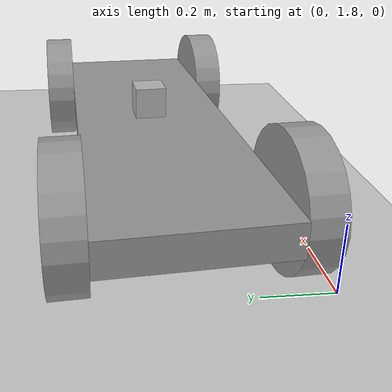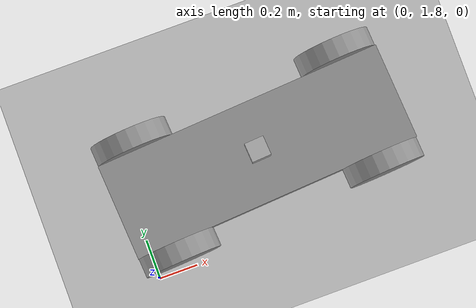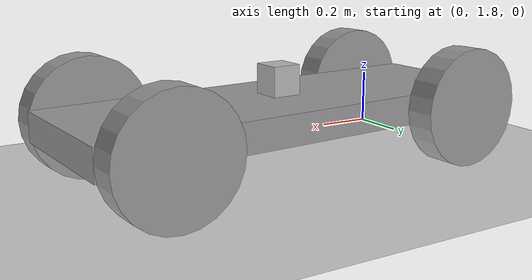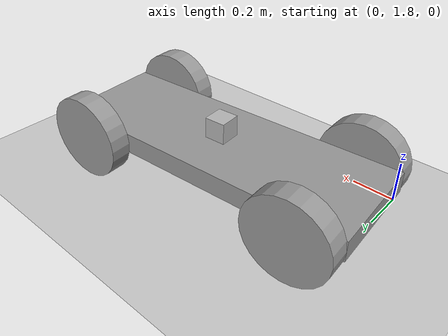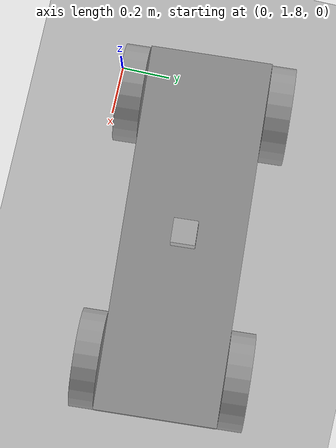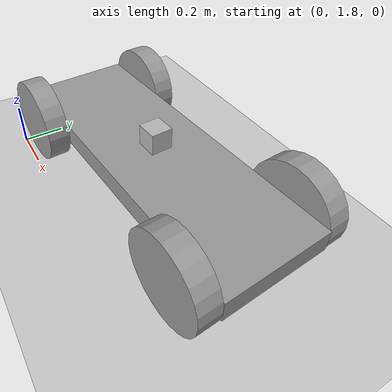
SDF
<sdf version="1.6">
 <world name="default">
  <model name="ground_plane">
   <static>1</static>
   <link name="link">
    <collision name="collision">
     <geometry><plane><normal>0 0 1</normal><size>100 100</size></plane></geometry>
     <surface>
      <contact><collide_bitmask>65535</collide_bitmask></contact>
      <friction><ode><mu>100</mu><mu2>50</mu2></ode></friction>
     </surface>
    </collision>
    <visual name="visual">
     <cast_shadows>0</cast_shadows>
     <geometry><plane><normal>0 0 1</normal><size>100 100</size></plane></geometry>
     <material>
      <script><uri>file://media/materials/scripts/gazebo.material</uri><name>Gazebo/Grey</name></script>
     </material>
    </visual>
   </link>
  </model>
  <model name="MobileRobot">
   <link name="link_1">
    <pose>-0.000519 -0.000589 -0.009488 0 -0 0</pose>
    <inertial>
     <mass>1</mass>
     <inertia>
      <ixx>0.166667</ixx>
      <ixy>0</ixy>
      <ixz>0</ixz>
      <iyy>0.166667</iyy>
      <iyz>0</iyz>
      <izz>0.166667</izz>
     </inertia>
    </inertial>
    <visual name="visual">
     <geometry><box><size>1.5 0.5 0.1</size></box></geometry>
     <material>
      <lighting>1</lighting>
      <script><uri>file://media/materials/scripts/gazebo.material</uri><name>Gazebo/Grey</name></script>
      <shader type="pixel"><normal_map>__default__</normal_map></shader>
      <ambient>0.3 0.3 0.3 1</ambient>
      <diffuse>0.7 0.7 0.7 1</diffuse>
      <specular>0.01 0.01 0.01 1</specular>
      <emissive>0 0 0 1</emissive>
     </material>
    </visual>
    <collision name="collision">
     <geometry><box><size>1.5 0.5 0.1</size></box></geometry>
     <surface>
      <friction>
       <ode><mu>1</mu><mu2>1</mu2><fdir1>0 0 0</fdir1><slip1>0</slip1><slip2>0</slip2></ode>
       <torsional>
        <coefficient>1</coefficient>
        <patch_radius>0</patch_radius>
        <surface_radius>0</surface_radius>
        <use_patch_radius>1</use_patch_radius>
        <ode><slip>0</slip></ode>
       </torsional>
      </friction>
      <bounce><restitution_coefficient>0</restitution_coefficient><threshold>1e+06</threshold></bounce>
      <contact>
       <collide_without_contact>0</collide_without_contact>
       <collide_without_contact_bitmask>1</collide_without_contact_bitmask>
       <collide_bitmask>1</collide_bitmask>
       <ode>
        <soft_cfm>0</soft_cfm>
        <soft_erp>0.2</soft_erp>
        <kp>1e+13</kp>
        <kd>1</kd>
        <max_vel>0.01</max_vel>
        <min_depth>0</min_depth>
       </ode>
       <bullet>
        <split_impulse>1</split_impulse>
        <split_impulse_penetration_threshold>-0.01</split_impulse_penetration_threshold>
        <soft_cfm>0</soft_cfm>
        <soft_erp>0.2</soft_erp>
        <kp>1e+13</kp>
        <kd>1</kd>
       </bullet>
      </contact>
     </surface>
    </collision>
   </link>
   <link name="link_2">
    <pose>-0.550519 -0.300608 -0.009488 1.5707 -0 0</pose>
    <inertial>
     <mass>1</mass>
     <inertia><ixx>0.145833</ixx><ixy>0</ixy><ixz>0</ixz><iyy>0.145833</iyy><iyz>0</iyz><izz>0.125</izz></inertia>
    </inertial>
    <visual name="visual">
     <geometry><cylinder><radius>0.2</radius><length>0.1</length></cylinder></geometry>
     <material>
      <lighting>1</lighting>
      <script><uri>file://media/materials/scripts/gazebo.material</uri><name>Gazebo/Grey</name></script>
      <shader type="pixel"><normal_map>__default__</normal_map></shader>
      <ambient>0.3 0.3 0.3 1</ambient>
      <diffuse>0.7 0.7 0.7 1</diffuse>
      <specular>0.01 0.01 0.01 1</specular>
      <emissive>0 0 0 1</emissive>
     </material>
    </visual>
    <collision name="collision">
     <geometry><cylinder><radius>0.2</radius><length>0.1</length></cylinder></geometry>
     <surface>
      <friction>
       <ode><mu>1</mu><mu2>1</mu2><fdir1>0 0 0</fdir1><slip1>0</slip1><slip2>0</slip2></ode>
       <torsional>
        <coefficient>1</coefficient>
        <patch_radius>0</patch_radius>
        <surface_radius>0</surface_radius>
        <use_patch_radius>1</use_patch_radius>
        <ode><slip>0</slip></ode>
       </torsional>
      </friction>
      <bounce><restitution_coefficient>0</restitution_coefficient><threshold>1e+06</threshold></bounce>
      <contact>
       <collide_without_contact>0</collide_without_contact>
       <collide_without_contact_bitmask>1</collide_without_contact_bitmask>
       <collide_bitmask>1</collide_bitmask>
       <ode>
        <soft_cfm>0</soft_cfm>
        <soft_erp>0.2</soft_erp>
        <kp>1e+13</kp>
        <kd>1</kd>
        <max_vel>0.01</max_vel>
        <min_depth>0</min_depth>
       </ode>
       <bullet>
        <split_impulse>1</split_impulse>
        <split_impulse_penetration_threshold>-0.01</split_impulse_penetration_threshold>
        <soft_cfm>0</soft_cfm>
        <soft_erp>0.2</soft_erp>
        <kp>1e+13</kp>
        <kd>1</kd>
       </bullet>
      </contact>
     </surface>
    </collision>
   </link>
   <link name="link_2_clone">
    <pose>-0.550519 0.299431 -0.009488 1.5707 -0 0</pose>
    <inertial>
     <mass>1</mass>
     <inertia><ixx>0.145833</ixx><ixy>0</ixy><ixz>0</ixz><iyy>0.145833</iyy><iyz>0</iyz><izz>0.125</izz></inertia>
    </inertial>
    <visual name="visual">
     <geometry><cylinder><radius>0.2</radius><length>0.1</length></cylinder></geometry>
     <material>
      <lighting>1</lighting>
      <script><uri>file://media/materials/scripts/gazebo.material</uri><name>Gazebo/Grey</name></script>
      <shader type="pixel"><normal_map>__default__</normal_map></shader>
      <ambient>0.3 0.3 0.3 1</ambient>
      <diffuse>0.7 0.7 0.7 1</diffuse>
      <specular>0.01 0.01 0.01 1</specular>
      <emissive>0 0 0 1</emissive>
     </material>
    </visual>
    <collision name="collision">
     <geometry><cylinder><radius>0.2</radius><length>0.1</length></cylinder></geometry>
     <surface>
      <friction>
       <ode><mu>1</mu><mu2>1</mu2><fdir1>0 0 0</fdir1><slip1>0</slip1><slip2>0</slip2></ode>
       <torsional>
        <coefficient>1</coefficient>
        <patch_radius>0</patch_radius>
        <surface_radius>0</surface_radius>
        <use_patch_radius>1</use_patch_radius>
        <ode><slip>0</slip></ode>
       </torsional>
      </friction>
      <bounce><restitution_coefficient>0</restitution_coefficient><threshold>1e+06</threshold></bounce>
      <contact>
       <collide_without_contact>0</collide_without_contact>
       <collide_without_contact_bitmask>1</collide_without_contact_bitmask>
       <collide_bitmask>1</collide_bitmask>
       <ode>
        <soft_cfm>0</soft_cfm>
        <soft_erp>0.2</soft_erp>
        <kp>1e+13</kp>
        <kd>1</kd>
        <max_vel>0.01</max_vel>
        <min_depth>0</min_depth>
       </ode>
       <bullet>
        <split_impulse>1</split_impulse>
        <split_impulse_penetration_threshold>-0.01</split_impulse_penetration_threshold>
        <soft_cfm>0</soft_cfm>
        <soft_erp>0.2</soft_erp>
        <kp>1e+13</kp>
        <kd>1</kd>
       </bullet>
      </contact>
     </surface>
    </collision>
   </link>
   <link name="link_2_clone_0">
    <pose>0.549481 -0.300608 -0.009488 1.5707 -0 0</pose>
    <inertial>
     <mass>1</mass>
     <inertia><ixx>0.145833</ixx><ixy>0</ixy><ixz>0</ixz><iyy>0.145833</iyy><iyz>0</iyz><izz>0.125</izz></inertia>
    </inertial>
    <visual name="visual">
     <geometry><cylinder><radius>0.2</radius><length>0.1</length></cylinder></geometry>
     <material>
      <lighting>1</lighting>
      <script><uri>file://media/materials/scripts/gazebo.material</uri><name>Gazebo/Grey</name></script>
      <shader type="pixel"><normal_map>__default__</normal_map></shader>
      <ambient>0.3 0.3 0.3 1</ambient>
      <diffuse>0.7 0.7 0.7 1</diffuse>
      <specular>0.01 0.01 0.01 1</specular>
      <emissive>0 0 0 1</emissive>
     </material>
    </visual>
    <collision name="collision">
     <geometry><cylinder><radius>0.2</radius><length>0.1</length></cylinder></geometry>
     <surface>
      <friction>
       <ode><mu>1</mu><mu2>1</mu2><fdir1>0 0 0</fdir1><slip1>0</slip1><slip2>0</slip2></ode>
       <torsional>
        <coefficient>1</coefficient>
        <patch_radius>0</patch_radius>
        <surface_radius>0</surface_radius>
        <use_patch_radius>1</use_patch_radius>
        <ode><slip>0</slip></ode>
       </torsional>
      </friction>
      <bounce><restitution_coefficient>0</restitution_coefficient><threshold>1e+06</threshold></bounce>
      <contact>
       <collide_without_contact>0</collide_without_contact>
       <collide_without_contact_bitmask>1</collide_without_contact_bitmask>
       <collide_bitmask>1</collide_bitmask>
       <ode>
        <soft_cfm>0</soft_cfm>
        <soft_erp>0.2</soft_erp>
        <kp>1e+13</kp>
        <kd>1</kd>
        <max_vel>0.01</max_vel>
        <min_depth>0</min_depth>
       </ode>
       <bullet>
        <split_impulse>1</split_impulse>
        <split_impulse_penetration_threshold>-0.01</split_impulse_penetration_threshold>
        <soft_cfm>0</soft_cfm>
        <soft_erp>0.2</soft_erp>
        <kp>1e+13</kp>
        <kd>1</kd>
       </bullet>
      </contact>
     </surface>
    </collision>
   </link>
   <link name="link_2_clone_1">
    <pose>0.549481 0.299431 -0.009488 1.5707 -0 0</pose>
    <inertial>
     <mass>1</mass>
     <inertia><ixx>0.145833</ixx><ixy>0</ixy><ixz>0</ixz><iyy>0.145833</iyy><iyz>0</iyz><izz>0.125</izz></inertia>
    </inertial>
    <visual name="visual">
     <geometry><cylinder><radius>0.2</radius><length>0.1</length></cylinder></geometry>
     <material>
      <lighting>1</lighting>
      <script><uri>file://media/materials/scripts/gazebo.material</uri><name>Gazebo/Grey</name></script>
      <shader type="pixel"><normal_map>__default__</normal_map></shader>
      <ambient>0.3 0.3 0.3 1</ambient>
      <diffuse>0.7 0.7 0.7 1</diffuse>
      <specular>0.01 0.01 0.01 1</specular>
      <emissive>0 0 0 1</emissive>
     </material>
    </visual>
    <collision name="collision">
     <geometry><cylinder><radius>0.2</radius><length>0.1</length></cylinder></geometry>
     <surface>
      <friction>
       <ode><mu>1</mu><mu2>1</mu2><fdir1>0 0 0</fdir1><slip1>0</slip1><slip2>0</slip2></ode>
       <torsional>
        <coefficient>1</coefficient>
        <patch_radius>0</patch_radius>
        <surface_radius>0</surface_radius>
        <use_patch_radius>1</use_patch_radius>
        <ode><slip>0</slip></ode>
       </torsional>
      </friction>
      <bounce><restitution_coefficient>0</restitution_coefficient><threshold>1e+06</threshold></bounce>
      <contact>
       <collide_without_contact>0</collide_without_contact>
       <collide_without_contact_bitmask>1</collide_without_contact_bitmask>
       <collide_bitmask>1</collide_bitmask>
       <ode>
        <soft_cfm>0</soft_cfm>
        <soft_erp>0.2</soft_erp>
        <kp>1e+13</kp>
        <kd>1</kd>
        <max_vel>0.01</max_vel>
        <min_depth>0</min_depth>
       </ode>
       <bullet>
        <split_impulse>1</split_impulse>
        <split_impulse_penetration_threshold>-0.01</split_impulse_penetration_threshold>
        <soft_cfm>0</soft_cfm>
        <soft_erp>0.2</soft_erp>
        <kp>1e+13</kp>
        <kd>1</kd>
       </bullet>
      </contact>
     </surface>
    </collision>
   </link>
   <model name="depth_camera">
    <link name="link">
     <pose>0 0 0.05 0 -0 0</pose>
     <inertial>
      <mass>0.1</mass>
      <inertia>
       <ixx>0.000166667</ixx>
       <iyy>0.000166667</iyy>
       <izz>0.000166667</izz>
       <ixy>0</ixy>
       <ixz>0</ixz>
       <iyz>0</iyz>
      </inertia>
     </inertial>
     <collision name="collision"><geometry><box><size>0.1 0.1 0.1</size></box></geometry></collision>
     <visual name="visual"><geometry><box><size>0.1 0.1 0.1</size></box></geometry></visual>
     <sensor name="camera" type="depth">
      <camera name="__default__">
       <horizontal_fov>1.047</horizontal_fov>
       <image><width>320</width><height>240</height></image>
       <clip><near>0.1</near><far>100</far></clip>
      </camera>
      <always_on>1</always_on>
      <update_rate>30</update_rate>
      <visualize>1</visualize>
     </sensor>
    </link>
    <pose>0.002593 0.002943 0.047439 0 -0 0</pose>
   </model>
   <joint name="link_1_JOINT_0" type="revolute">
    <parent>link_1</parent>
    <child>link_2_clone_0</child>
    <axis>
     <xyz>0 0 1</xyz>
     <use_parent_model_frame>0</use_parent_model_frame>
     <limit>
      <lower>-1.79769e+308</lower>
      <upper>1.79769e+308</upper>
      <effort>-1</effort>
      <velocity>-1</velocity>
     </limit>
     <dynamics>
      <spring_reference>0</spring_reference>
      <spring_stiffness>0</spring_stiffness>
      <damping>0</damping>
     </dynamics>
    </axis>
    <physics>
     <ode><limit><cfm>0</cfm><erp>0.2</erp></limit><suspension><cfm>0</cfm><erp>0.2</erp></suspension></ode>
    </physics>
   </joint>
   <joint name="link_1_JOINT_1" type="revolute">
    <parent>link_1</parent>
    <child>link_2</child>
    <axis>
     <xyz>0 0 1</xyz>
     <use_parent_model_frame>0</use_parent_model_frame>
     <limit>
      <lower>-1.79769e+308</lower>
      <upper>1.79769e+308</upper>
      <effort>-1</effort>
      <velocity>-1</velocity>
     </limit>
     <dynamics>
      <spring_reference>0</spring_reference>
      <spring_stiffness>0</spring_stiffness>
      <damping>0</damping>
     </dynamics>
    </axis>
    <physics>
     <ode><limit><cfm>0</cfm><erp>0.2</erp></limit><suspension><cfm>0</cfm><erp>0.2</erp></suspension></ode>
    </physics>
   </joint>
   <joint name="link_1_JOINT_2" type="revolute">
    <parent>link_1</parent>
    <child>link_2_clone_1</child>
    <axis>
     <xyz>0 0 1</xyz>
     <use_parent_model_frame>0</use_parent_model_frame>
     <limit>
      <lower>-1.79769e+308</lower>
      <upper>1.79769e+308</upper>
      <effort>-1</effort>
      <velocity>-1</velocity>
     </limit>
     <dynamics>
      <spring_reference>0</spring_reference>
      <spring_stiffness>0</spring_stiffness>
      <damping>0</damping>
     </dynamics>
    </axis>
    <physics>
     <ode><limit><cfm>0</cfm><erp>0.2</erp></limit><suspension><cfm>0</cfm><erp>0.2</erp></suspension></ode>
    </physics>
   </joint>
   <joint name="link_1_JOINT_3" type="revolute">
    <parent>link_1</parent>
    <child>link_2_clone</child>
    <axis>
     <xyz>0 0 1</xyz>
     <use_parent_model_frame>0</use_parent_model_frame>
     <limit>
      <lower>-1.79769e+308</lower>
      <upper>1.79769e+308</upper>
      <effort>-1</effort>
      <velocity>-1</velocity>
     </limit>
     <dynamics>
      <spring_reference>0</spring_reference>
      <spring_stiffness>0</spring_stiffness>
      <damping>0</damping>
     </dynamics>
    </axis>
    <physics>
     <ode><limit><cfm>0</cfm><erp>0.2</erp></limit><suspension><cfm>0</cfm><erp>0.2</erp></suspension></ode>
    </physics>
   </joint>
   <joint name="link_1_JOINT_4" type="fixed">
    <parent>link_1</parent>
    <child>depth_camera::link</child>
    <physics>
     <ode><limit><cfm>0</cfm><erp>0.2</erp></limit><suspension><cfm>0</cfm><erp>0.2</erp></suspension></ode>
    </physics>
   </joint>
   <static>0</static>
   <pose>0.673645 2.21522 0.209493 -3e-06 2e-06 0.064606</pose>
  </model>
 </world>
</sdf>
